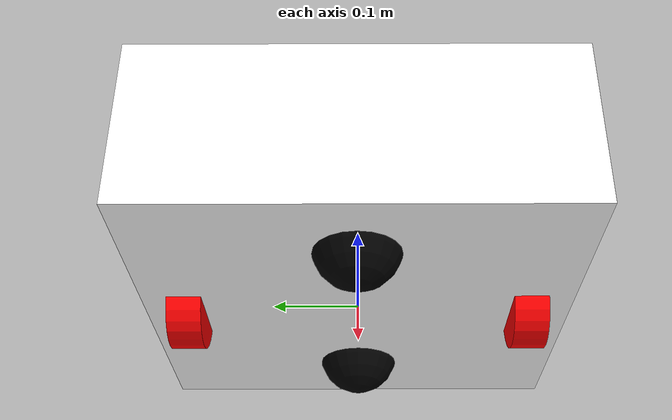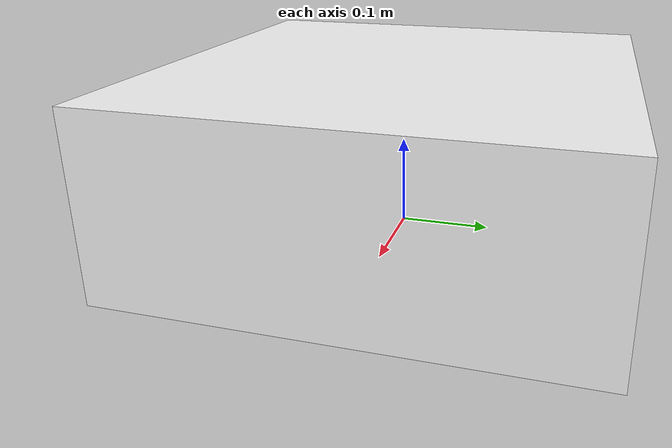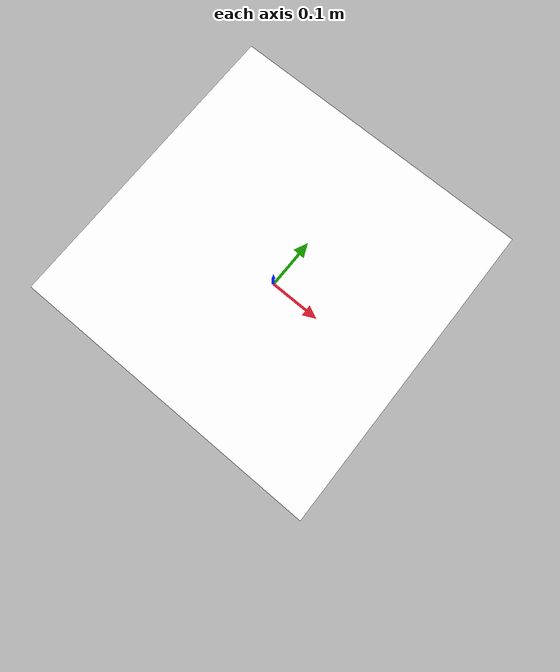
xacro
<?xml version="1.0"?>
<robot xmlns:xacro="http://www.ros.org/wiki/xacro">

    <xacro:include filename="inertial_macros.xacro"/>

    <xacro:property name="chassis_length" value="0.5"/>
    <xacro:property name="chassis_width" value="0.5"/>
    <xacro:property name="chassis_height" value="0.2"/>
    <xacro:property name="chassis_mass" value="1.0"/>
    <xacro:property name="wheel_radius" value="0.05"/>
    <xacro:property name="wheel_thickness" value="0.04"/>
    <xacro:property name="wheel_mass" value="0.1"/>
    <xacro:property name="wheel_offset_x" value="0.25"/>
    <xacro:property name="wheel_offset_y" value="0.2"/>
    <xacro:property name="wheel_offset_z" value="0.01"/>
    <xacro:property name="caster_wheel_radius" value="0.05"/>
    <xacro:property name="caster_wheel_mass" value="0.01"/>
    <xacro:property name="caster_wheel_f_offset_x" value="0.4"/>
    <xacro:property name="caster_wheel_b_offset_x" value="0.1"/>
    <xacro:property name="caster_wheel_offset_z" value="${wheel_offset_z - wheel_radius + caster_wheel_radius}"/>

    <material name="white">
        <color rgba="1 1 1 1" />
    </material>

    <material name="red">
        <color rgba="1 0 0 1"/>
    </material>

    <material name="blue">
        <color rgba="0.2 0.2 1 1"/>
    </material>

    <material name="black">
        <color rgba="0 0 0 1"/>
    </material>

    <!-- BASE LINK -->

    <link name="base_link">

    </link>

    <!-- BASE_FOOTPRINT LINK -->

    <joint name="base_footprint_joint" type="fixed">
        <parent link="base_link"/>
        <child link="base_footprint"/>
        <origin xyz="0 0 0" rpy="0 0 0"/>
    </joint>

    <link name="base_footprint">
    </link>

    <!-- CHASSIS LINK -->

    <joint name="chassis_joint" type="fixed">
        <parent link="base_link"/>
        <child link="chassis"/>
        <origin xyz="${-wheel_offset_x} 0 ${-wheel_offset_z}"/>
    </joint>

    <link name="chassis">
        <visual>
            <origin xyz="${chassis_length/2} 0 ${chassis_height/2}"/>
            <geometry>
                <box size="${chassis_length} ${chassis_width} ${chassis_height}"/>
            </geometry>
            <material name="white"/>
        </visual>
        <collision>
            <origin xyz="${chassis_length/2} 0 ${chassis_height/2}"/>
            <geometry>
                <box size="${chassis_length} ${chassis_width} ${chassis_height}"/>
            </geometry>
        </collision>
        <xacro:inertial_box mass="0.5" x="${chassis_length}" y="${chassis_width}" z="${chassis_height}" >
            <origin xyz="${chassis_length/2} 0 ${chassis_height/2}" rpy="0 0 0"/>
        </xacro:inertial_box>
    </link>

    <gazebo reference="chassis">
        <material>Gazebo/White</material>
    </gazebo>

    <!-- LEFT WHEEL LINK -->

    <joint name="left_wheel_joint" type="continuous">
        <parent link="base_link"/>
        <child link="left_wheel"/>
        <origin xyz="0 ${wheel_offset_y} 0" rpy="-${pi/2} 0 0" />
        <axis xyz="0 0 1"/>
    </joint>

    <link name="left_wheel">
        <visual>
            <geometry>
                <cylinder radius="${wheel_radius}" length="${wheel_thickness}"/>
            </geometry>
            <material name="red"/>
        </visual>
        <collision>
            <geometry>
                <sphere radius="${wheel_radius}"/>
            </geometry>
        </collision>
        <xacro:inertial_cylinder mass="${wheel_mass}" length="${wheel_thickness}" radius="${wheel_radius}">
            <origin xyz="0 0 0" rpy="0 0 0"/>
        </xacro:inertial_cylinder>
    </link>

    <gazebo reference="left_wheel">
        <material>Gazebo/Red</material>
    </gazebo>

    <!-- RIGHT WHEEL LINK -->

    <joint name="right_wheel_joint" type="continuous">
        <parent link="base_link"/>
        <child link="right_wheel"/>
        <origin xyz="0 ${-wheel_offset_y} 0" rpy="${pi/2} 0 0" />
        <axis xyz="0 0 -1"/>
    </joint>

    <link name="right_wheel">
        <visual>
            <geometry>
                <cylinder radius="${wheel_radius}" length="${wheel_thickness}"/>
            </geometry>
            <material name="red"/>
        </visual>
        <collision>
            <geometry>
                <sphere radius="${wheel_radius}"/>
            </geometry>
        </collision>
        <xacro:inertial_cylinder mass="${wheel_mass}" length="${wheel_thickness}" radius="${wheel_radius}">
            <origin xyz="0 0 0" rpy="0 0 0"/>
        </xacro:inertial_cylinder>
    </link>

    <gazebo reference="right_wheel">
        <material>Gazebo/Red</material>
    </gazebo>

    <!-- CASTER WHEEL F LINK -->

    <joint name="caster_wheel_f_joint" type="fixed">
        <parent link="chassis"/>
        <child link="caster_wheel_f"/>
        <origin xyz="${caster_wheel_f_offset_x} 0 ${caster_wheel_offset_z}"/>
    </joint>

    <link name="caster_wheel_f">
        <visual>
            <geometry>
                <sphere radius="${caster_wheel_radius}"/>
            </geometry>
            <material name="black"/>
        </visual>
        <collision>
            <geometry>
                <sphere radius="${caster_wheel_radius}"/>
            </geometry>
        </collision>
        <xacro:inertial_sphere mass="${caster_wheel_mass}" radius="${caster_wheel_radius}">
            <origin xyz="0 0 0" rpy="0 0 0"/>
        </xacro:inertial_sphere>
    </link>
    <gazebo reference="caster_wheel_f">
        <material>Gazebo/Black</material>
        <mu1 value="0.001"/>
        <mu2 value="0.001"/>
    </gazebo>

    <!-- CASTER WHEEL B LINK -->

    <joint name="caster_wheel_b_joint" type="fixed">
        <parent link="chassis"/>
        <child link="caster_wheel_b"/>
        <origin xyz="${caster_wheel_b_offset_x} 0 ${caster_wheel_offset_z}"/>
    </joint>

    <link name="caster_wheel_b">
        <visual>
            <geometry>
                <sphere radius="${caster_wheel_radius}"/>
            </geometry>
            <material name="black"/>
        </visual>
        <collision>
            <geometry>
                <sphere radius="${caster_wheel_radius}"/>
            </geometry>
        </collision>
        <xacro:inertial_sphere mass="${caster_wheel_mass}" radius="${caster_wheel_radius}">
            <origin xyz="0 0 0" rpy="0 0 0"/>
        </xacro:inertial_sphere>
    </link>
    <gazebo reference="caster_wheel_b">
        <material>Gazebo/Black</material>
        <mu1 value="0.001"/>
        <mu2 value="0.001"/>
    </gazebo>

</robot>
